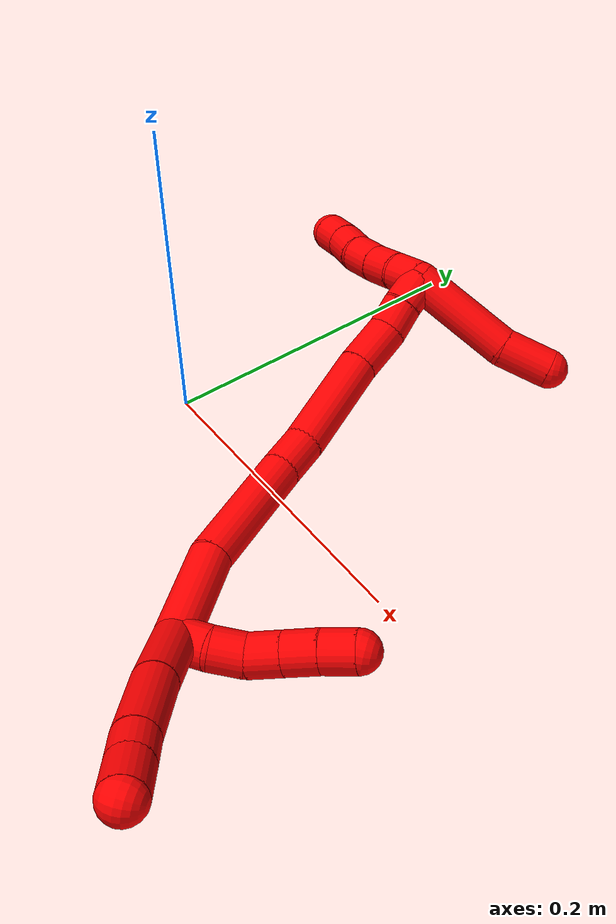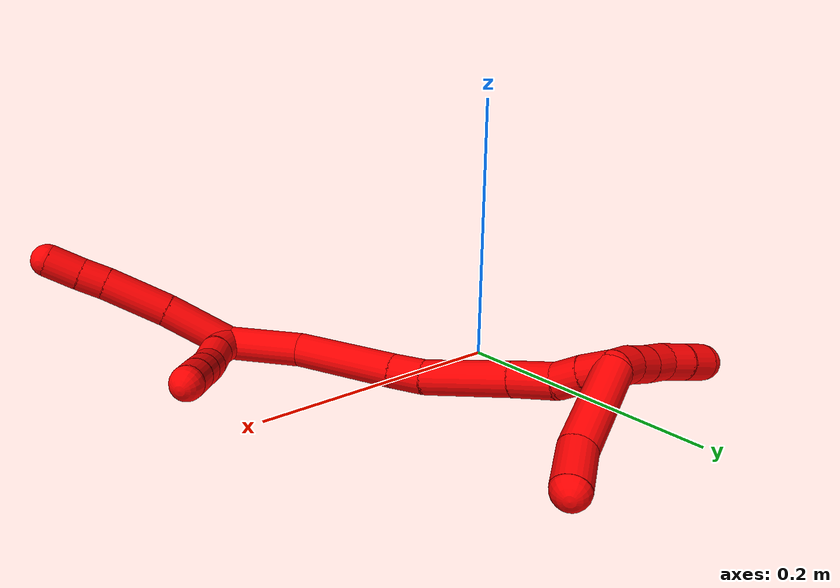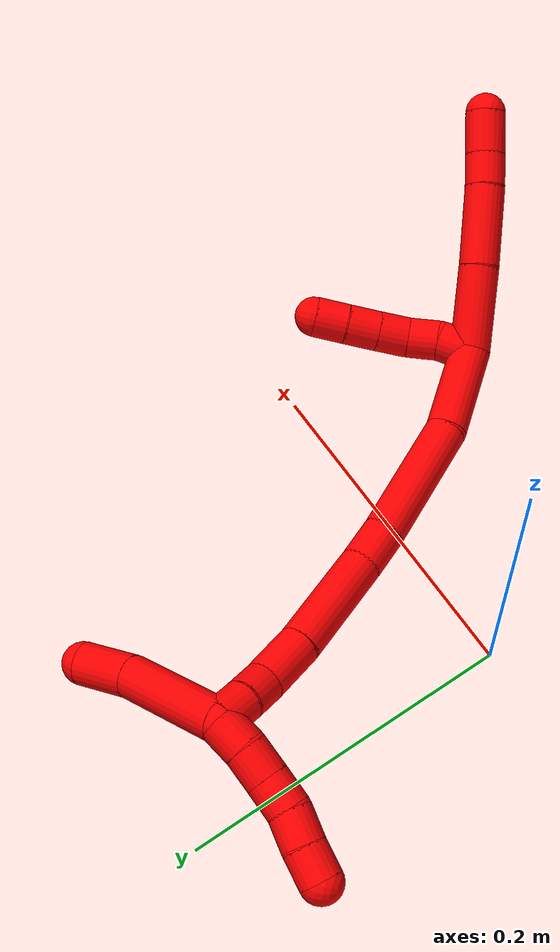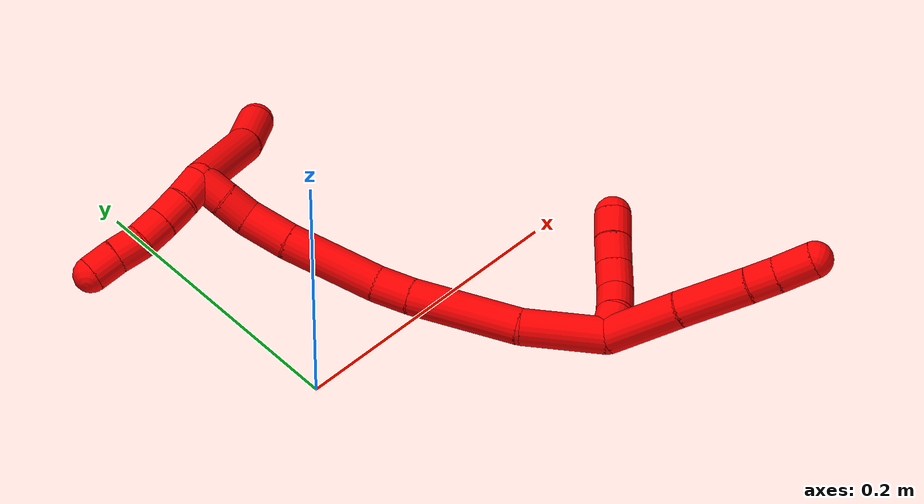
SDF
<sdf version="1.7">
 <world name="default">
  <model name="2">
   <static>0</static>
   <link name="2">
    <collision name="collision-cylinder-e_1_2_8">
     <pose>0.005682 -0.025695 0.003774 1.42496 0.215406 0.186262</pose>
     <geometry><cylinder><radius>0.0125</radius><length>0.05317</length></cylinder></geometry>
     <surface>
      <friction><ode><mu>1.16</mu><mu2>1.16</mu2><slip1>0</slip1><slip2>0</slip2></ode></friction>
      <contact><ode><kp>1e+06</kp><kd>1</kd><max_vel>0</max_vel><min_depth>0.001</min_depth></ode></contact>
     </surface>
    </collision>
    <visual name="visual-cylinder-e_1_2_8">
     <pose>0.005682 -0.025695 0.003774 1.42496 0.215406 0.186262</pose>
     <geometry><cylinder><radius>0.0125</radius><length>0.05317</length></cylinder></geometry>
     <material><ambient>1 0 0 1</ambient></material>
    </visual>
    <collision name="collision-cylinder-e_2_8_9">
     <pose>0.018055 -0.075103 0.012099 1.38119 0.270286 0.223779</pose>
     <geometry><cylinder><radius>0.0125</radius><length>0.050112</length></cylinder></geometry>
     <surface>
      <friction><ode><mu>1.16</mu><mu2>1.16</mu2><slip1>0</slip1><slip2>0</slip2></ode></friction>
      <contact><ode><kp>1e+06</kp><kd>1</kd><max_vel>0</max_vel><min_depth>0.001</min_depth></ode></contact>
     </surface>
    </collision>
    <visual name="visual-cylinder-e_2_8_9">
     <pose>0.018055 -0.075103 0.012099 1.38119 0.270286 0.223779</pose>
     <geometry><cylinder><radius>0.0125</radius><length>0.050112</length></cylinder></geometry>
     <material><ambient>1 0 0 1</ambient></material>
    </visual>
    <collision name="collision-cylinder-e_3_9_10">
     <pose>0.027709 -0.108087 0.019133 1.30908 0.299561 0.230588</pose>
     <geometry><cylinder><radius>0.0125</radius><length>0.020088</length></cylinder></geometry>
     <surface>
      <friction><ode><mu>1.16</mu><mu2>1.16</mu2><slip1>0</slip1><slip2>0</slip2></ode></friction>
      <contact><ode><kp>1e+06</kp><kd>1</kd><max_vel>0</max_vel><min_depth>0.001</min_depth></ode></contact>
     </surface>
    </collision>
    <visual name="visual-cylinder-e_3_9_10">
     <pose>0.027709 -0.108087 0.019133 1.30908 0.299561 0.230588</pose>
     <geometry><cylinder><radius>0.0125</radius><length>0.020088</length></cylinder></geometry>
     <material><ambient>1 0 0 1</ambient></material>
    </visual>
    <collision name="collision-cylinder-e_4_10_6">
     <pose>0.033957 -0.129847 0.024857 1.31691 0.249211 0.1932</pose>
     <geometry><cylinder><radius>0.0125</radius><length>0.02663</length></cylinder></geometry>
     <surface>
      <friction><ode><mu>1.16</mu><mu2>1.16</mu2><slip1>0</slip1><slip2>0</slip2></ode></friction>
      <contact><ode><kp>1e+06</kp><kd>1</kd><max_vel>0</max_vel><min_depth>0.001</min_depth></ode></contact>
     </surface>
    </collision>
    <visual name="visual-cylinder-e_4_10_6">
     <pose>0.033957 -0.129847 0.024857 1.31691 0.249211 0.1932</pose>
     <geometry><cylinder><radius>0.0125</radius><length>0.02663</length></cylinder></geometry>
     <material><ambient>1 0 0 1</ambient></material>
    </visual>
    <collision name="collision-cylinder-e_1_2_11">
     <pose>-7.8e-05 -0.00122 0.009925 0.122263 -0.007815 -0.000478</pose>
     <geometry><cylinder><radius>0.0125</radius><length>0.02</length></cylinder></geometry>
     <surface>
      <friction><ode><mu>1.16</mu><mu2>1.16</mu2><slip1>0</slip1><slip2>0</slip2></ode></friction>
      <contact><ode><kp>1e+06</kp><kd>1</kd><max_vel>0</max_vel><min_depth>0.001</min_depth></ode></contact>
     </surface>
    </collision>
    <visual name="visual-cylinder-e_1_2_11">
     <pose>-7.8e-05 -0.00122 0.009925 0.122263 -0.007815 -0.000478</pose>
     <geometry><cylinder><radius>0.0125</radius><length>0.02</length></cylinder></geometry>
     <material><ambient>1 0 0 1</ambient></material>
    </visual>
    <collision name="collision-cylinder-e_2_11_12">
     <pose>-0.000547 -0.001127 0.029756 -0.131706 -0.039087 0.002578</pose>
     <geometry><cylinder><radius>0.0125</radius><length>0.02</length></cylinder></geometry>
     <surface>
      <friction><ode><mu>1.16</mu><mu2>1.16</mu2><slip1>0</slip1><slip2>0</slip2></ode></friction>
      <contact><ode><kp>1e+06</kp><kd>1</kd><max_vel>0</max_vel><min_depth>0.001</min_depth></ode></contact>
     </surface>
    </collision>
    <visual name="visual-cylinder-e_2_11_12">
     <pose>-0.000547 -0.001127 0.029756 -0.131706 -0.039087 0.002578</pose>
     <geometry><cylinder><radius>0.0125</radius><length>0.02</length></cylinder></geometry>
     <material><ambient>1 0 0 1</ambient></material>
    </visual>
    <collision name="collision-cylinder-e_3_12_13">
     <pose>-0.004133 -9.7e-05 0.049133 0.029759 -0.325255 -0.004883</pose>
     <geometry><cylinder><radius>0.0125</radius><length>0.02</length></cylinder></geometry>
     <surface>
      <friction><ode><mu>1.16</mu><mu2>1.16</mu2><slip1>0</slip1><slip2>0</slip2></ode></friction>
      <contact><ode><kp>1e+06</kp><kd>1</kd><max_vel>0</max_vel><min_depth>0.001</min_depth></ode></contact>
     </surface>
    </collision>
    <visual name="visual-cylinder-e_3_12_13">
     <pose>-0.004133 -9.7e-05 0.049133 0.029759 -0.325255 -0.004883</pose>
     <geometry><cylinder><radius>0.0125</radius><length>0.02</length></cylinder></geometry>
     <material><ambient>1 0 0 1</ambient></material>
    </visual>
    <collision name="collision-cylinder-e_4_13_14">
     <pose>-0.010527 -0.000784 0.068071 0.042839 -0.325533 -0.007036</pose>
     <geometry><cylinder><radius>0.0125</radius><length>0.02</length></cylinder></geometry>
     <surface>
      <friction><ode><mu>1.16</mu><mu2>1.16</mu2><slip1>0</slip1><slip2>0</slip2></ode></friction>
      <contact><ode><kp>1e+06</kp><kd>1</kd><max_vel>0</max_vel><min_depth>0.001</min_depth></ode></contact>
     </surface>
    </collision>
    <visual name="visual-cylinder-e_4_13_14">
     <pose>-0.010527 -0.000784 0.068071 0.042839 -0.325533 -0.007036</pose>
     <geometry><cylinder><radius>0.0125</radius><length>0.02</length></cylinder></geometry>
     <material><ambient>1 0 0 1</ambient></material>
    </visual>
    <collision name="collision-cylinder-e_5_14_5">
     <pose>-0.016317 -0.00156 0.087188 0.038268 -0.262193 -0.005046</pose>
     <geometry><cylinder><radius>0.0125</radius><length>0.02</length></cylinder></geometry>
     <surface>
      <friction><ode><mu>1.16</mu><mu2>1.16</mu2><slip1>0</slip1><slip2>0</slip2></ode></friction>
      <contact><ode><kp>1e+06</kp><kd>1</kd><max_vel>0</max_vel><min_depth>0.001</min_depth></ode></contact>
     </surface>
    </collision>
    <visual name="visual-cylinder-e_5_14_5">
     <pose>-0.016317 -0.00156 0.087188 0.038268 -0.262193 -0.005046</pose>
     <geometry><cylinder><radius>0.0125</radius><length>0.02</length></cylinder></geometry>
     <material><ambient>1 0 0 1</ambient></material>
    </visual>
    <collision name="collision-cylinder-e_1_2_15">
     <pose>-0.01921 0.021788 -0.000707 -1.60324 -0.722342 0.744056</pose>
     <geometry><cylinder><radius>0.0125</radius><length>0.058111</length></cylinder></geometry>
     <surface>
      <friction><ode><mu>1.16</mu><mu2>1.16</mu2><slip1>0</slip1><slip2>0</slip2></ode></friction>
      <contact><ode><kp>1e+06</kp><kd>1</kd><max_vel>0</max_vel><min_depth>0.001</min_depth></ode></contact>
     </surface>
    </collision>
    <visual name="visual-cylinder-e_1_2_15">
     <pose>-0.01921 0.021788 -0.000707 -1.60324 -0.722342 0.744056</pose>
     <geometry><cylinder><radius>0.0125</radius><length>0.058111</length></cylinder></geometry>
     <material><ambient>1 0 0 1</ambient></material>
    </visual>
    <collision name="collision-cylinder-e_2_15_16">
     <pose>-0.063163 0.07223 0.006608 -1.29783 -0.693684 0.535169</pose>
     <geometry><cylinder><radius>0.0125</radius><length>0.077399</length></cylinder></geometry>
     <surface>
      <friction><ode><mu>1.16</mu><mu2>1.16</mu2><slip1>0</slip1><slip2>0</slip2></ode></friction>
      <contact><ode><kp>1e+06</kp><kd>1</kd><max_vel>0</max_vel><min_depth>0.001</min_depth></ode></contact>
     </surface>
    </collision>
    <visual name="visual-cylinder-e_2_15_16">
     <pose>-0.063163 0.07223 0.006608 -1.29783 -0.693684 0.535169</pose>
     <geometry><cylinder><radius>0.0125</radius><length>0.077399</length></cylinder></geometry>
     <material><ambient>1 0 0 1</ambient></material>
    </visual>
    <collision name="collision-cylinder-e_3_16_17">
     <pose>-0.096561 0.109752 0.017913 -1.21618 -0.741129 0.528237</pose>
     <geometry><cylinder><radius>0.0125</radius><length>0.025636</length></cylinder></geometry>
     <surface>
      <friction><ode><mu>1.16</mu><mu2>1.16</mu2><slip1>0</slip1><slip2>0</slip2></ode></friction>
      <contact><ode><kp>1e+06</kp><kd>1</kd><max_vel>0</max_vel><min_depth>0.001</min_depth></ode></contact>
     </surface>
    </collision>
    <visual name="visual-cylinder-e_3_16_17">
     <pose>-0.096561 0.109752 0.017913 -1.21618 -0.741129 0.528237</pose>
     <geometry><cylinder><radius>0.0125</radius><length>0.025636</length></cylinder></geometry>
     <material><ambient>1 0 0 1</ambient></material>
    </visual>
    <collision name="collision-cylinder-e_4_17_18">
     <pose>-0.131271 0.137448 0.028996 -1.17809 -0.907037 0.629672</pose>
     <geometry><cylinder><radius>0.0125</radius><length>0.06616</length></cylinder></geometry>
     <surface>
      <friction><ode><mu>1.16</mu><mu2>1.16</mu2><slip1>0</slip1><slip2>0</slip2></ode></friction>
      <contact><ode><kp>1e+06</kp><kd>1</kd><max_vel>0</max_vel><min_depth>0.001</min_depth></ode></contact>
     </surface>
    </collision>
    <visual name="visual-cylinder-e_4_17_18">
     <pose>-0.131271 0.137448 0.028996 -1.17809 -0.907037 0.629672</pose>
     <geometry><cylinder><radius>0.0125</radius><length>0.06616</length></cylinder></geometry>
     <material><ambient>1 0 0 1</ambient></material>
    </visual>
    <collision name="collision-cylinder-e_5_18_19">
     <pose>-0.169808 0.164889 0.041948 -1.03164 -0.893522 0.530484</pose>
     <geometry><cylinder><radius>0.0125</radius><length>0.032029</length></cylinder></geometry>
     <surface>
      <friction><ode><mu>1.16</mu><mu2>1.16</mu2><slip1>0</slip1><slip2>0</slip2></ode></friction>
      <contact><ode><kp>1e+06</kp><kd>1</kd><max_vel>0</max_vel><min_depth>0.001</min_depth></ode></contact>
     </surface>
    </collision>
    <visual name="visual-cylinder-e_5_18_19">
     <pose>-0.169808 0.164889 0.041948 -1.03164 -0.893522 0.530484</pose>
     <geometry><cylinder><radius>0.0125</radius><length>0.032029</length></cylinder></geometry>
     <material><ambient>1 0 0 1</ambient></material>
    </visual>
    <collision name="collision-cylinder-e_6_19_20">
     <pose>-0.19154 0.176521 0.049633 -0.872905 -1.16805 0.598099</pose>
     <geometry><cylinder><radius>0.0125</radius><length>0.020114</length></cylinder></geometry>
     <surface>
      <friction><ode><mu>1.16</mu><mu2>1.16</mu2><slip1>0</slip1><slip2>0</slip2></ode></friction>
      <contact><ode><kp>1e+06</kp><kd>1</kd><max_vel>0</max_vel><min_depth>0.001</min_depth></ode></contact>
     </surface>
    </collision>
    <visual name="visual-cylinder-e_6_19_20">
     <pose>-0.19154 0.176521 0.049633 -0.872905 -1.16805 0.598099</pose>
     <geometry><cylinder><radius>0.0125</radius><length>0.020114</length></cylinder></geometry>
     <material><ambient>1 0 0 1</ambient></material>
    </visual>
    <collision name="collision-cylinder-e_7_20_1">
     <pose>-0.209805 0.183212 0.055462 -0.839169 -1.07 0.516908</pose>
     <geometry><cylinder><radius>0.0125</radius><length>0.02055</length></cylinder></geometry>
     <surface>
      <friction><ode><mu>1.16</mu><mu2>1.16</mu2><slip1>0</slip1><slip2>0</slip2></ode></friction>
      <contact><ode><kp>1e+06</kp><kd>1</kd><max_vel>0</max_vel><min_depth>0.001</min_depth></ode></contact>
     </surface>
    </collision>
    <visual name="visual-cylinder-e_7_20_1">
     <pose>-0.209805 0.183212 0.055462 -0.839169 -1.07 0.516908</pose>
     <geometry><cylinder><radius>0.0125</radius><length>0.02055</length></cylinder></geometry>
     <material><ambient>1 0 0 1</ambient></material>
    </visual>
    <collision name="collision-cylinder-e_1_1_21">
     <pose>-0.204108 0.188157 0.089256 -0.041746 0.449083 -0.009536</pose>
     <geometry><cylinder><radius>0.0125</radius><length>0.067768</length></cylinder></geometry>
     <surface>
      <friction><ode><mu>1.16</mu><mu2>1.16</mu2><slip1>0</slip1><slip2>0</slip2></ode></friction>
      <contact><ode><kp>1e+06</kp><kd>1</kd><max_vel>0</max_vel><min_depth>0.001</min_depth></ode></contact>
     </surface>
    </collision>
    <visual name="visual-cylinder-e_1_1_21">
     <pose>-0.204108 0.188157 0.089256 -0.041746 0.449083 -0.009536</pose>
     <geometry><cylinder><radius>0.0125</radius><length>0.067768</length></cylinder></geometry>
     <material><ambient>1 0 0 1</ambient></material>
    </visual>
    <collision name="collision-cylinder-e_2_21_4">
     <pose>-0.185986 0.191257 0.135398 -0.116217 0.213308 -0.012456</pose>
     <geometry><cylinder><radius>0.0125</radius><length>0.032232</length></cylinder></geometry>
     <surface>
      <friction><ode><mu>1.16</mu><mu2>1.16</mu2><slip1>0</slip1><slip2>0</slip2></ode></friction>
      <contact><ode><kp>1e+06</kp><kd>1</kd><max_vel>0</max_vel><min_depth>0.001</min_depth></ode></contact>
     </surface>
    </collision>
    <visual name="visual-cylinder-e_2_21_4">
     <pose>-0.185986 0.191257 0.135398 -0.116217 0.213308 -0.012456</pose>
     <geometry><cylinder><radius>0.0125</radius><length>0.032232</length></cylinder></geometry>
     <material><ambient>1 0 0 1</ambient></material>
    </visual>
    <collision name="collision-cylinder-e_1_1_22">
     <pose>-0.220219 0.191625 0.050066 -2.64219 -0.140557 0.538651</pose>
     <geometry><cylinder><radius>0.0125</radius><length>0.02</length></cylinder></geometry>
     <surface>
      <friction><ode><mu>1.16</mu><mu2>1.16</mu2><slip1>0</slip1><slip2>0</slip2></ode></friction>
      <contact><ode><kp>1e+06</kp><kd>1</kd><max_vel>0</max_vel><min_depth>0.001</min_depth></ode></contact>
     </surface>
    </collision>
    <visual name="visual-cylinder-e_1_1_22">
     <pose>-0.220219 0.191625 0.050066 -2.64219 -0.140557 0.538651</pose>
     <geometry><cylinder><radius>0.0125</radius><length>0.02</length></cylinder></geometry>
     <material><ambient>1 0 0 1</ambient></material>
    </visual>
    <collision name="collision-cylinder-e_2_22_23">
     <pose>-0.222932 0.202426 0.033527 -2.48405 -0.131508 0.381349</pose>
     <geometry><cylinder><radius>0.0125</radius><length>0.02</length></cylinder></geometry>
     <surface>
      <friction><ode><mu>1.16</mu><mu2>1.16</mu2><slip1>0</slip1><slip2>0</slip2></ode></friction>
      <contact><ode><kp>1e+06</kp><kd>1</kd><max_vel>0</max_vel><min_depth>0.001</min_depth></ode></contact>
     </surface>
    </collision>
    <visual name="visual-cylinder-e_2_22_23">
     <pose>-0.222932 0.202426 0.033527 -2.48405 -0.131508 0.381349</pose>
     <geometry><cylinder><radius>0.0125</radius><length>0.02</length></cylinder></geometry>
     <material><ambient>1 0 0 1</ambient></material>
    </visual>
    <collision name="collision-cylinder-e_3_23_24">
     <pose>-0.226394 0.214217 0.017774 -2.51424 -0.216838 0.647476</pose>
     <geometry><cylinder><radius>0.0125</radius><length>0.02</length></cylinder></geometry>
     <surface>
      <friction><ode><mu>1.16</mu><mu2>1.16</mu2><slip1>0</slip1><slip2>0</slip2></ode></friction>
      <contact><ode><kp>1e+06</kp><kd>1</kd><max_vel>0</max_vel><min_depth>0.001</min_depth></ode></contact>
     </surface>
    </collision>
    <visual name="visual-cylinder-e_3_23_24">
     <pose>-0.226394 0.214217 0.017774 -2.51424 -0.216838 0.647476</pose>
     <geometry><cylinder><radius>0.0125</radius><length>0.02</length></cylinder></geometry>
     <material><ambient>1 0 0 1</ambient></material>
    </visual>
    <collision name="collision-cylinder-e_4_24_25">
     <pose>-0.23182 0.226932 0.003502 -2.31002 -0.333573 0.72855</pose>
     <geometry><cylinder><radius>0.0125</radius><length>0.02</length></cylinder></geometry>
     <surface>
      <friction><ode><mu>1.16</mu><mu2>1.16</mu2><slip1>0</slip1><slip2>0</slip2></ode></friction>
      <contact><ode><kp>1e+06</kp><kd>1</kd><max_vel>0</max_vel><min_depth>0.001</min_depth></ode></contact>
     </surface>
    </collision>
    <visual name="visual-cylinder-e_4_24_25">
     <pose>-0.23182 0.226932 0.003502 -2.31002 -0.333573 0.72855</pose>
     <geometry><cylinder><radius>0.0125</radius><length>0.02</length></cylinder></geometry>
     <material><ambient>1 0 0 1</ambient></material>
    </visual>
    <collision name="collision-cylinder-e_5_25_3">
     <pose>-0.237631 0.240735 -0.009723 -2.3591 -0.256502 0.605981</pose>
     <geometry><cylinder><radius>0.0125</radius><length>0.02</length></cylinder></geometry>
     <surface>
      <friction><ode><mu>1.16</mu><mu2>1.16</mu2><slip1>0</slip1><slip2>0</slip2></ode></friction>
      <contact><ode><kp>1e+06</kp><kd>1</kd><max_vel>0</max_vel><min_depth>0.001</min_depth></ode></contact>
     </surface>
    </collision>
    <visual name="visual-cylinder-e_5_25_3">
     <pose>-0.237631 0.240735 -0.009723 -2.3591 -0.256502 0.605981</pose>
     <geometry><cylinder><radius>0.0125</radius><length>0.02</length></cylinder></geometry>
     <material><ambient>1 0 0 1</ambient></material>
    </visual>
    <collision name="collision-sphere-3">
     <pose>-0.240168 0.247555 -0.016583 0 -0 0</pose>
     <geometry><sphere><radius>0.0125</radius></sphere></geometry>
     <surface>
      <friction><ode><mu>1.16</mu><mu2>1.16</mu2><slip1>0</slip1><slip2>0</slip2></ode></friction>
      <contact><ode><kp>1e+06</kp><kd>1</kd><max_vel>0</max_vel><min_depth>0.001</min_depth></ode></contact>
     </surface>
    </collision>
    <visual name="visual-sphere-3">
     <pose>-0.240168 0.247555 -0.016583 0 -0 0</pose>
     <geometry><sphere><radius>0.0125</radius></sphere></geometry>
     <material><ambient>1 0 0 1</ambient></material>
    </visual>
    <collision name="collision-sphere-25">
     <pose>-0.235094 0.233915 -0.002864 0 -0 0</pose>
     <geometry><sphere><radius>0.0125</radius></sphere></geometry>
     <surface>
      <friction><ode><mu>1.16</mu><mu2>1.16</mu2><slip1>0</slip1><slip2>0</slip2></ode></friction>
      <contact><ode><kp>1e+06</kp><kd>1</kd><max_vel>0</max_vel><min_depth>0.001</min_depth></ode></contact>
     </surface>
    </collision>
    <visual name="visual-sphere-25">
     <pose>-0.235094 0.233915 -0.002864 0 -0 0</pose>
     <geometry><sphere><radius>0.0125</radius></sphere></geometry>
     <material><ambient>1 0 0 1</ambient></material>
    </visual>
    <collision name="collision-sphere-24">
     <pose>-0.228546 0.21995 0.009868 0 -0 0</pose>
     <geometry><sphere><radius>0.0125</radius></sphere></geometry>
     <surface>
      <friction><ode><mu>1.16</mu><mu2>1.16</mu2><slip1>0</slip1><slip2>0</slip2></ode></friction>
      <contact><ode><kp>1e+06</kp><kd>1</kd><max_vel>0</max_vel><min_depth>0.001</min_depth></ode></contact>
     </surface>
    </collision>
    <visual name="visual-sphere-24">
     <pose>-0.228546 0.21995 0.009868 0 -0 0</pose>
     <geometry><sphere><radius>0.0125</radius></sphere></geometry>
     <material><ambient>1 0 0 1</ambient></material>
    </visual>
    <collision name="collision-sphere-23">
     <pose>-0.224243 0.208485 0.025681 0 -0 0</pose>
     <geometry><sphere><radius>0.0125</radius></sphere></geometry>
     <surface>
      <friction><ode><mu>1.16</mu><mu2>1.16</mu2><slip1>0</slip1><slip2>0</slip2></ode></friction>
      <contact><ode><kp>1e+06</kp><kd>1</kd><max_vel>0</max_vel><min_depth>0.001</min_depth></ode></contact>
     </surface>
    </collision>
    <visual name="visual-sphere-23">
     <pose>-0.224243 0.208485 0.025681 0 -0 0</pose>
     <geometry><sphere><radius>0.0125</radius></sphere></geometry>
     <material><ambient>1 0 0 1</ambient></material>
    </visual>
    <collision name="collision-sphere-22">
     <pose>-0.22162 0.196367 0.041374 0 -0 0</pose>
     <geometry><sphere><radius>0.0125</radius></sphere></geometry>
     <surface>
      <friction><ode><mu>1.16</mu><mu2>1.16</mu2><slip1>0</slip1><slip2>0</slip2></ode></friction>
      <contact><ode><kp>1e+06</kp><kd>1</kd><max_vel>0</max_vel><min_depth>0.001</min_depth></ode></contact>
     </surface>
    </collision>
    <visual name="visual-sphere-22">
     <pose>-0.22162 0.196367 0.041374 0 -0 0</pose>
     <geometry><sphere><radius>0.0125</radius></sphere></geometry>
     <material><ambient>1 0 0 1</ambient></material>
    </visual>
    <collision name="collision-sphere-4">
     <pose>-0.182574 0.193084 0.151042 0 -0 0</pose>
     <geometry><sphere><radius>0.0125</radius></sphere></geometry>
     <surface>
      <friction><ode><mu>1.16</mu><mu2>1.16</mu2><slip1>0</slip1><slip2>0</slip2></ode></friction>
      <contact><ode><kp>1e+06</kp><kd>1</kd><max_vel>0</max_vel><min_depth>0.001</min_depth></ode></contact>
     </surface>
    </collision>
    <visual name="visual-sphere-4">
     <pose>-0.182574 0.193084 0.151042 0 -0 0</pose>
     <geometry><sphere><radius>0.0125</radius></sphere></geometry>
     <material><ambient>1 0 0 1</ambient></material>
    </visual>
    <collision name="collision-sphere-21">
     <pose>-0.189398 0.189431 0.119753 0 -0 0</pose>
     <geometry><sphere><radius>0.0125</radius></sphere></geometry>
     <surface>
      <friction><ode><mu>1.16</mu><mu2>1.16</mu2><slip1>0</slip1><slip2>0</slip2></ode></friction>
      <contact><ode><kp>1e+06</kp><kd>1</kd><max_vel>0</max_vel><min_depth>0.001</min_depth></ode></contact>
     </surface>
    </collision>
    <visual name="visual-sphere-21">
     <pose>-0.189398 0.189431 0.119753 0 -0 0</pose>
     <geometry><sphere><radius>0.0125</radius></sphere></geometry>
     <material><ambient>1 0 0 1</ambient></material>
    </visual>
    <collision name="collision-sphere-1">
     <pose>-0.218818 0.186883 0.058758 0 -0 0</pose>
     <geometry><sphere><radius>0.0125</radius></sphere></geometry>
     <surface>
      <friction><ode><mu>1.16</mu><mu2>1.16</mu2><slip1>0</slip1><slip2>0</slip2></ode></friction>
      <contact><ode><kp>1e+06</kp><kd>1</kd><max_vel>0</max_vel><min_depth>0.001</min_depth></ode></contact>
     </surface>
    </collision>
    <visual name="visual-sphere-1">
     <pose>-0.218818 0.186883 0.058758 0 -0 0</pose>
     <geometry><sphere><radius>0.0125</radius></sphere></geometry>
     <material><ambient>1 0 0 1</ambient></material>
    </visual>
    <collision name="collision-sphere-11">
     <pose>-0.000156 -0.002439 0.01985 0 -0 0</pose>
     <geometry><sphere><radius>0.0125</radius></sphere></geometry>
     <surface>
      <friction><ode><mu>1.16</mu><mu2>1.16</mu2><slip1>0</slip1><slip2>0</slip2></ode></friction>
      <contact><ode><kp>1e+06</kp><kd>1</kd><max_vel>0</max_vel><min_depth>0.001</min_depth></ode></contact>
     </surface>
    </collision>
    <visual name="visual-sphere-11">
     <pose>-0.000156 -0.002439 0.01985 0 -0 0</pose>
     <geometry><sphere><radius>0.0125</radius></sphere></geometry>
     <material><ambient>1 0 0 1</ambient></material>
    </visual>
    <collision name="collision-sphere-6">
     <pose>0.037241 -0.142337 0.028098 0 -0 0</pose>
     <geometry><sphere><radius>0.0125</radius></sphere></geometry>
     <surface>
      <friction><ode><mu>1.16</mu><mu2>1.16</mu2><slip1>0</slip1><slip2>0</slip2></ode></friction>
      <contact><ode><kp>1e+06</kp><kd>1</kd><max_vel>0</max_vel><min_depth>0.001</min_depth></ode></contact>
     </surface>
    </collision>
    <visual name="visual-sphere-6">
     <pose>0.037241 -0.142337 0.028098 0 -0 0</pose>
     <geometry><sphere><radius>0.0125</radius></sphere></geometry>
     <material><ambient>1 0 0 1</ambient></material>
    </visual>
    <collision name="collision-sphere-10">
     <pose>0.030673 -0.117357 0.021616 0 -0 0</pose>
     <geometry><sphere><radius>0.0125</radius></sphere></geometry>
     <surface>
      <friction><ode><mu>1.16</mu><mu2>1.16</mu2><slip1>0</slip1><slip2>0</slip2></ode></friction>
      <contact><ode><kp>1e+06</kp><kd>1</kd><max_vel>0</max_vel><min_depth>0.001</min_depth></ode></contact>
     </surface>
    </collision>
    <visual name="visual-sphere-10">
     <pose>0.030673 -0.117357 0.021616 0 -0 0</pose>
     <geometry><sphere><radius>0.0125</radius></sphere></geometry>
     <material><ambient>1 0 0 1</ambient></material>
    </visual>
    <collision name="collision-sphere-9">
     <pose>0.024745 -0.098817 0.01665 0 -0 0</pose>
     <geometry><sphere><radius>0.0125</radius></sphere></geometry>
     <surface>
      <friction><ode><mu>1.16</mu><mu2>1.16</mu2><slip1>0</slip1><slip2>0</slip2></ode></friction>
      <contact><ode><kp>1e+06</kp><kd>1</kd><max_vel>0</max_vel><min_depth>0.001</min_depth></ode></contact>
     </surface>
    </collision>
    <visual name="visual-sphere-9">
     <pose>0.024745 -0.098817 0.01665 0 -0 0</pose>
     <geometry><sphere><radius>0.0125</radius></sphere></geometry>
     <material><ambient>1 0 0 1</ambient></material>
    </visual>
    <collision name="collision-sphere-2">
     <geometry><sphere><radius>0.0125</radius></sphere></geometry>
     <surface>
      <friction><ode><mu>1.16</mu><mu2>1.16</mu2><slip1>0</slip1><slip2>0</slip2></ode></friction>
      <contact><ode><kp>1e+06</kp><kd>1</kd><max_vel>0</max_vel><min_depth>0.001</min_depth></ode></contact>
     </surface>
    </collision>
    <visual name="visual-sphere-2">
     <geometry><sphere><radius>0.0125</radius></sphere></geometry>
     <material><ambient>1 0 0 1</ambient></material>
    </visual>
    <collision name="collision-sphere-19">
     <pose>-0.182288 0.173501 0.0471 0 -0 0</pose>
     <geometry><sphere><radius>0.0125</radius></sphere></geometry>
     <surface>
      <friction><ode><mu>1.16</mu><mu2>1.16</mu2><slip1>0</slip1><slip2>0</slip2></ode></friction>
      <contact><ode><kp>1e+06</kp><kd>1</kd><max_vel>0</max_vel><min_depth>0.001</min_depth></ode></contact>
     </surface>
    </collision>
    <visual name="visual-sphere-19">
     <pose>-0.182288 0.173501 0.0471 0 -0 0</pose>
     <geometry><sphere><radius>0.0125</radius></sphere></geometry>
     <material><ambient>1 0 0 1</ambient></material>
    </visual>
    <collision name="collision-sphere-8">
     <pose>0.011365 -0.05139 0.007548 0 -0 0</pose>
     <geometry><sphere><radius>0.0125</radius></sphere></geometry>
     <surface>
      <friction><ode><mu>1.16</mu><mu2>1.16</mu2><slip1>0</slip1><slip2>0</slip2></ode></friction>
      <contact><ode><kp>1e+06</kp><kd>1</kd><max_vel>0</max_vel><min_depth>0.001</min_depth></ode></contact>
     </surface>
    </collision>
    <visual name="visual-sphere-8">
     <pose>0.011365 -0.05139 0.007548 0 -0 0</pose>
     <geometry><sphere><radius>0.0125</radius></sphere></geometry>
     <material><ambient>1 0 0 1</ambient></material>
    </visual>
    <collision name="collision-sphere-12">
     <pose>-0.000938 0.000185 0.039662 0 -0 0</pose>
     <geometry><sphere><radius>0.0125</radius></sphere></geometry>
     <surface>
      <friction><ode><mu>1.16</mu><mu2>1.16</mu2><slip1>0</slip1><slip2>0</slip2></ode></friction>
      <contact><ode><kp>1e+06</kp><kd>1</kd><max_vel>0</max_vel><min_depth>0.001</min_depth></ode></contact>
     </surface>
    </collision>
    <visual name="visual-sphere-12">
     <pose>-0.000938 0.000185 0.039662 0 -0 0</pose>
     <geometry><sphere><radius>0.0125</radius></sphere></geometry>
     <material><ambient>1 0 0 1</ambient></material>
    </visual>
    <collision name="collision-sphere-13">
     <pose>-0.007329 -0.000378 0.058605 0 -0 0</pose>
     <geometry><sphere><radius>0.0125</radius></sphere></geometry>
     <surface>
      <friction><ode><mu>1.16</mu><mu2>1.16</mu2><slip1>0</slip1><slip2>0</slip2></ode></friction>
      <contact><ode><kp>1e+06</kp><kd>1</kd><max_vel>0</max_vel><min_depth>0.001</min_depth></ode></contact>
     </surface>
    </collision>
    <visual name="visual-sphere-13">
     <pose>-0.007329 -0.000378 0.058605 0 -0 0</pose>
     <geometry><sphere><radius>0.0125</radius></sphere></geometry>
     <material><ambient>1 0 0 1</ambient></material>
    </visual>
    <collision name="collision-sphere-14">
     <pose>-0.013725 -0.00119 0.077537 0 -0 0</pose>
     <geometry><sphere><radius>0.0125</radius></sphere></geometry>
     <surface>
      <friction><ode><mu>1.16</mu><mu2>1.16</mu2><slip1>0</slip1><slip2>0</slip2></ode></friction>
      <contact><ode><kp>1e+06</kp><kd>1</kd><max_vel>0</max_vel><min_depth>0.001</min_depth></ode></contact>
     </surface>
    </collision>
    <visual name="visual-sphere-14">
     <pose>-0.013725 -0.00119 0.077537 0 -0 0</pose>
     <geometry><sphere><radius>0.0125</radius></sphere></geometry>
     <material><ambient>1 0 0 1</ambient></material>
    </visual>
    <collision name="collision-sphere-5">
     <pose>-0.018909 -0.001929 0.096839 0 -0 0</pose>
     <geometry><sphere><radius>0.0125</radius></sphere></geometry>
     <surface>
      <friction><ode><mu>1.16</mu><mu2>1.16</mu2><slip1>0</slip1><slip2>0</slip2></ode></friction>
      <contact><ode><kp>1e+06</kp><kd>1</kd><max_vel>0</max_vel><min_depth>0.001</min_depth></ode></contact>
     </surface>
    </collision>
    <visual name="visual-sphere-5">
     <pose>-0.018909 -0.001929 0.096839 0 -0 0</pose>
     <geometry><sphere><radius>0.0125</radius></sphere></geometry>
     <material><ambient>1 0 0 1</ambient></material>
    </visual>
    <collision name="collision-sphere-15">
     <pose>-0.03842 0.043576 -0.001414 0 -0 0</pose>
     <geometry><sphere><radius>0.0125</radius></sphere></geometry>
     <surface>
      <friction><ode><mu>1.16</mu><mu2>1.16</mu2><slip1>0</slip1><slip2>0</slip2></ode></friction>
      <contact><ode><kp>1e+06</kp><kd>1</kd><max_vel>0</max_vel><min_depth>0.001</min_depth></ode></contact>
     </surface>
    </collision>
    <visual name="visual-sphere-15">
     <pose>-0.03842 0.043576 -0.001414 0 -0 0</pose>
     <geometry><sphere><radius>0.0125</radius></sphere></geometry>
     <material><ambient>1 0 0 1</ambient></material>
    </visual>
    <collision name="collision-sphere-16">
     <pose>-0.087907 0.100884 0.01463 0 -0 0</pose>
     <geometry><sphere><radius>0.0125</radius></sphere></geometry>
     <surface>
      <friction><ode><mu>1.16</mu><mu2>1.16</mu2><slip1>0</slip1><slip2>0</slip2></ode></friction>
      <contact><ode><kp>1e+06</kp><kd>1</kd><max_vel>0</max_vel><min_depth>0.001</min_depth></ode></contact>
     </surface>
    </collision>
    <visual name="visual-sphere-16">
     <pose>-0.087907 0.100884 0.01463 0 -0 0</pose>
     <geometry><sphere><radius>0.0125</radius></sphere></geometry>
     <material><ambient>1 0 0 1</ambient></material>
    </visual>
    <collision name="collision-sphere-17">
     <pose>-0.105215 0.11862 0.021197 0 -0 0</pose>
     <geometry><sphere><radius>0.0125</radius></sphere></geometry>
     <surface>
      <friction><ode><mu>1.16</mu><mu2>1.16</mu2><slip1>0</slip1><slip2>0</slip2></ode></friction>
      <contact><ode><kp>1e+06</kp><kd>1</kd><max_vel>0</max_vel><min_depth>0.001</min_depth></ode></contact>
     </surface>
    </collision>
    <visual name="visual-sphere-17">
     <pose>-0.105215 0.11862 0.021197 0 -0 0</pose>
     <geometry><sphere><radius>0.0125</radius></sphere></geometry>
     <material><ambient>1 0 0 1</ambient></material>
    </visual>
    <collision name="collision-sphere-18">
     <pose>-0.157328 0.156277 0.036795 0 -0 0</pose>
     <geometry><sphere><radius>0.0125</radius></sphere></geometry>
     <surface>
      <friction><ode><mu>1.16</mu><mu2>1.16</mu2><slip1>0</slip1><slip2>0</slip2></ode></friction>
      <contact><ode><kp>1e+06</kp><kd>1</kd><max_vel>0</max_vel><min_depth>0.001</min_depth></ode></contact>
     </surface>
    </collision>
    <visual name="visual-sphere-18">
     <pose>-0.157328 0.156277 0.036795 0 -0 0</pose>
     <geometry><sphere><radius>0.0125</radius></sphere></geometry>
     <material><ambient>1 0 0 1</ambient></material>
    </visual>
    <collision name="collision-sphere-20">
     <pose>-0.200792 0.179542 0.052166 0 -0 0</pose>
     <geometry><sphere><radius>0.0125</radius></sphere></geometry>
     <surface>
      <friction><ode><mu>1.16</mu><mu2>1.16</mu2><slip1>0</slip1><slip2>0</slip2></ode></friction>
      <contact><ode><kp>1e+06</kp><kd>1</kd><max_vel>0</max_vel><min_depth>0.001</min_depth></ode></contact>
     </surface>
    </collision>
    <visual name="visual-sphere-20">
     <pose>-0.200792 0.179542 0.052166 0 -0 0</pose>
     <geometry><sphere><radius>0.0125</radius></sphere></geometry>
     <material><ambient>1 0 0 1</ambient></material>
    </visual>
    <inertial>
     <pose>-0.095119 0.081254 0.03384 0 -0 0</pose>
     <mass>0.75</mass>
     <inertia>
      <ixx>0.000162</ixx>
      <ixy>0</ixy>
      <ixz>0</ixz>
      <iyy>0.000157</iyy>
      <iyz>0</iyz>
      <izz>2.4e-05</izz>
     </inertia>
    </inertial>
   </link>
   <pose>0.163572 -0.107106 0.014408 -1.66795 0.837008 -0.990704</pose>
  </model>
 </world>
</sdf>
